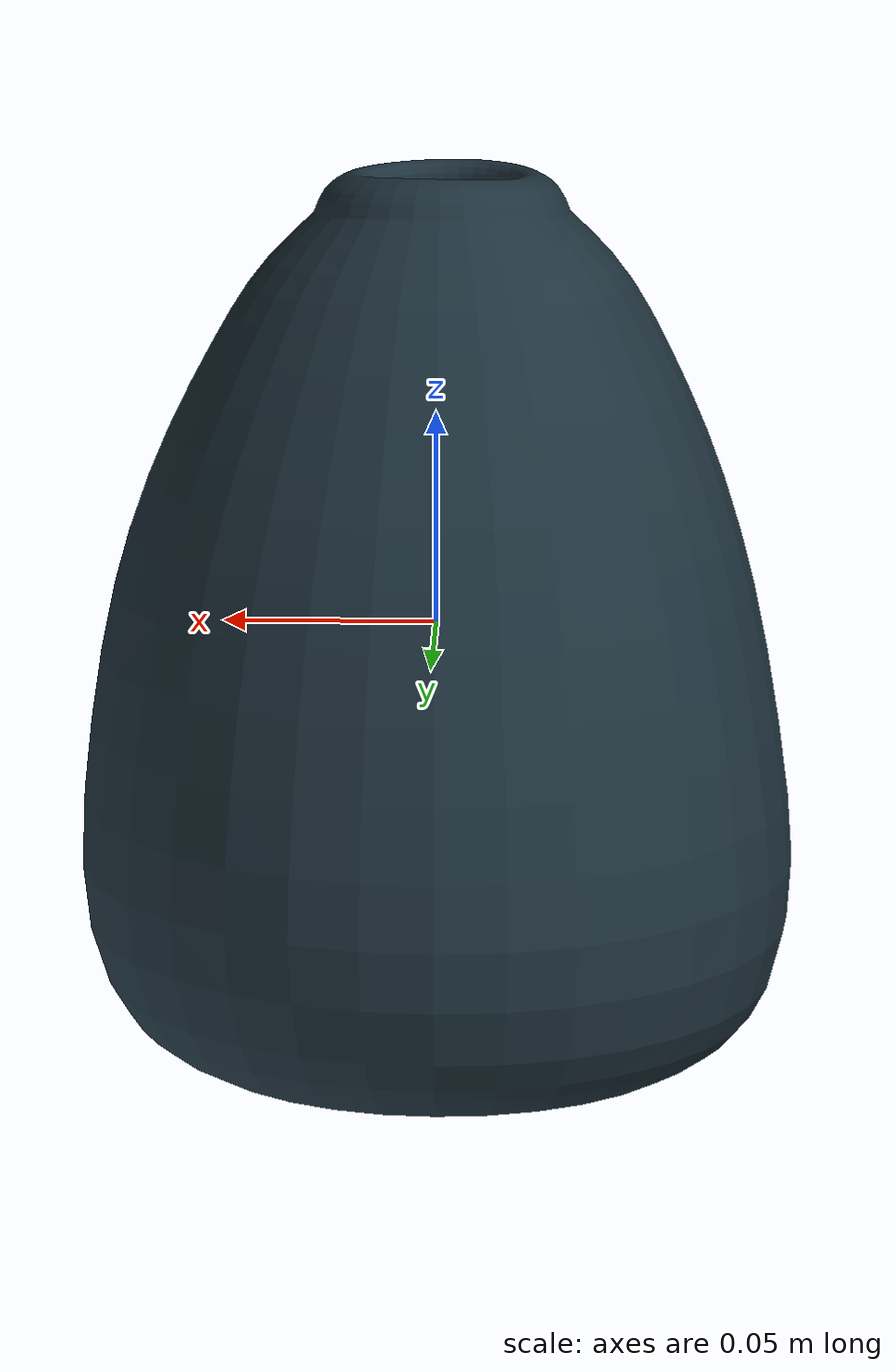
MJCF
<?xml version="1.0" ?>
<mujoco model="blue_vase">
	<compiler meshdir="blue_vase/meshes" texturedir="blue_vase/textures" angle="radian" autolimits="true" balanceinertia="true" boundmass="0.000001" boundinertia="0.000001"/>
	<default>
		<default class="visual">
			<geom contype="0" conaffinity="0"/>
		</default>
		<default class="collision">
			<geom rgba="1.0 0.0 0.0 0.0"/>
		</default>
	</default>
	<asset>
		<mesh name="BlueVase" file="stl/BlueVase.stl" scale="1.0 1.0 1.0"/>
		<mesh name="BlueVase_001" file="stl/BlueVase_001.stl" scale="1.0 1.0 1.0"/>
		<mesh name="BlueVase_002" file="stl/BlueVase_002.stl" scale="1.0 1.0 1.0"/>
		<mesh name="BlueVase_003" file="stl/BlueVase_003.stl" scale="1.0 1.0 1.0"/>
		<mesh name="BlueVase_004" file="stl/BlueVase_004.stl" scale="1.0 1.0 1.0"/>
		<mesh name="BlueVase_005" file="stl/BlueVase_005.stl" scale="1.0 1.0 1.0"/>
		<mesh name="BlueVase_006" file="stl/BlueVase_006.stl" scale="1.0 1.0 1.0"/>
		<mesh name="BlueVase_007" file="stl/BlueVase_007.stl" scale="1.0 1.0 1.0"/>
		<mesh name="BlueVase_008" file="stl/BlueVase_008.stl" scale="1.0 1.0 1.0"/>
		<mesh name="BlueVase_009" file="stl/BlueVase_009.stl" scale="1.0 1.0 1.0"/>
		<mesh name="BlueVase_010" file="stl/BlueVase_010.stl" scale="1.0 1.0 1.0"/>
		<mesh name="BlueVase_011" file="stl/BlueVase_011.stl" scale="1.0 1.0 1.0"/>
		<mesh name="BlueVase_012" file="stl/BlueVase_012.stl" scale="1.0 1.0 1.0"/>
		<mesh name="BlueVase_013" file="stl/BlueVase_013.stl" scale="1.0 1.0 1.0"/>
		<mesh name="BlueVase_014" file="stl/BlueVase_014.stl" scale="1.0 1.0 1.0"/>
		<mesh name="BlueVase_015" file="stl/BlueVase_015.stl" scale="1.0 1.0 1.0"/>
		<mesh name="BlueVase_016" file="stl/BlueVase_016.stl" scale="1.0 1.0 1.0"/>
		<mesh name="BlueVase_017" file="stl/BlueVase_017.stl" scale="1.0 1.0 1.0"/>
		<mesh name="BlueVase_018" file="stl/BlueVase_018.stl" scale="1.0 1.0 1.0"/>
		<mesh name="BlueVase_019" file="stl/BlueVase_019.stl" scale="1.0 1.0 1.0"/>
		<mesh name="BlueVase_020" file="stl/BlueVase_020.stl" scale="1.0 1.0 1.0"/>
		<mesh name="BlueVase_021" file="stl/BlueVase_021.stl" scale="1.0 1.0 1.0"/>
		<mesh name="BlueVase_022" file="stl/BlueVase_022.stl" scale="1.0 1.0 1.0"/>
		<mesh name="BlueVase_023" file="stl/BlueVase_023.stl" scale="1.0 1.0 1.0"/>
		<mesh name="BlueVase_024" file="stl/BlueVase_024.stl" scale="1.0 1.0 1.0"/>
		<mesh name="BlueVase_025" file="stl/BlueVase_025.stl" scale="1.0 1.0 1.0"/>
		<mesh name="BlueVase_026" file="stl/BlueVase_026.stl" scale="1.0 1.0 1.0"/>
		<mesh name="BlueVase_027" file="stl/BlueVase_027.stl" scale="1.0 1.0 1.0"/>
		<mesh name="BlueVase_028" file="stl/BlueVase_028.stl" scale="1.0 1.0 1.0"/>
		<mesh name="BlueVase_029" file="stl/BlueVase_029.stl" scale="1.0 1.0 1.0"/>
		<mesh name="BlueVase_030" file="stl/BlueVase_030.stl" scale="1.0 1.0 1.0"/>
		<mesh name="BlueVase_031" file="stl/BlueVase_031.stl" scale="1.0 1.0 1.0"/>
		<mesh name="BlueVase_032" file="stl/BlueVase_032.stl" scale="1.0 1.0 1.0"/>
		<mesh name="BlueVase_033" file="stl/BlueVase_033.stl" scale="1.0 1.0 1.0"/>
		<mesh name="BlueVase_034" file="stl/BlueVase_034.stl" scale="1.0 1.0 1.0"/>
		<mesh name="BlueVase_035" file="stl/BlueVase_035.stl" scale="1.0 1.0 1.0"/>
		<mesh name="BlueVase_036" file="stl/BlueVase_036.stl" scale="1.0 1.0 1.0"/>
		<mesh name="BlueVase_037" file="stl/BlueVase_037.stl" scale="1.0 1.0 1.0"/>
		<mesh name="BlueVase_038" file="stl/BlueVase_038.stl" scale="1.0 1.0 1.0"/>
		<mesh name="BlueVase_039" file="stl/BlueVase_039.stl" scale="1.0 1.0 1.0"/>
		<mesh name="BlueVase_040" file="stl/BlueVase_040.stl" scale="1.0 1.0 1.0"/>
		<mesh name="BlueVase_041" file="stl/BlueVase_041.stl" scale="1.0 1.0 1.0"/>
		<mesh name="BlueVase_042" file="stl/BlueVase_042.stl" scale="1.0 1.0 1.0"/>
		<mesh name="BlueVase_043" file="stl/BlueVase_043.stl" scale="1.0 1.0 1.0"/>
		<mesh name="BlueVase_044" file="stl/BlueVase_044.stl" scale="1.0 1.0 1.0"/>
		<mesh name="BlueVase_045" file="stl/BlueVase_045.stl" scale="1.0 1.0 1.0"/>
		<mesh name="BlueVase_046" file="stl/BlueVase_046.stl" scale="1.0 1.0 1.0"/>
		<mesh name="BlueVase_047" file="stl/BlueVase_047.stl" scale="1.0 1.0 1.0"/>
		<mesh name="BlueVase_048" file="stl/BlueVase_048.stl" scale="1.0 1.0 1.0"/>
		<mesh name="BlueVase_049" file="stl/BlueVase_049.stl" scale="1.0 1.0 1.0"/>
		<mesh name="BlueVase_050" file="stl/BlueVase_050.stl" scale="1.0 1.0 1.0"/>
		<mesh name="BlueVase_051" file="stl/BlueVase_051.stl" scale="1.0 1.0 1.0"/>
		<mesh name="BlueVase_052" file="stl/BlueVase_052.stl" scale="1.0 1.0 1.0"/>
		<mesh name="BlueVase_053" file="stl/BlueVase_053.stl" scale="1.0 1.0 1.0"/>
		<mesh name="BlueVase_054" file="stl/BlueVase_054.stl" scale="1.0 1.0 1.0"/>
		<mesh name="BlueVase_055" file="stl/BlueVase_055.stl" scale="1.0 1.0 1.0"/>
		<mesh name="BlueVase_056" file="stl/BlueVase_056.stl" scale="1.0 1.0 1.0"/>
		<mesh name="BlueVase_057" file="stl/BlueVase_057.stl" scale="1.0 1.0 1.0"/>
		<mesh name="BlueVase_058" file="stl/BlueVase_058.stl" scale="1.0 1.0 1.0"/>
		<mesh name="BlueVase_059" file="stl/BlueVase_059.stl" scale="1.0 1.0 1.0"/>
		<mesh name="BlueVase_060" file="stl/BlueVase_060.stl" scale="1.0 1.0 1.0"/>
		<mesh name="BlueVase_061" file="stl/BlueVase_061.stl" scale="1.0 1.0 1.0"/>
		<mesh name="BlueVase_062" file="stl/BlueVase_062.stl" scale="1.0 1.0 1.0"/>
		<mesh name="BlueVase_063" file="stl/BlueVase_063.stl" scale="1.0 1.0 1.0"/>
		<mesh name="BlueVase_064" file="stl/BlueVase_064.stl" scale="1.0 1.0 1.0"/>
		<mesh name="BlueVase_065" file="stl/BlueVase_065.stl" scale="1.0 1.0 1.0"/>
		<mesh name="BlueVase_066" file="stl/BlueVase_066.stl" scale="1.0 1.0 1.0"/>
		<mesh name="BlueVase_067" file="stl/BlueVase_067.stl" scale="1.0 1.0 1.0"/>
		<mesh name="BlueVase_068" file="stl/BlueVase_068.stl" scale="1.0 1.0 1.0"/>
		<mesh name="BlueVase_069" file="stl/BlueVase_069.stl" scale="1.0 1.0 1.0"/>
		<mesh name="BlueVase_070" file="stl/BlueVase_070.stl" scale="1.0 1.0 1.0"/>
		<mesh name="BlueVase_071" file="stl/BlueVase_071.stl" scale="1.0 1.0 1.0"/>
		<mesh name="BlueVase_072" file="stl/BlueVase_072.stl" scale="1.0 1.0 1.0"/>
		<mesh name="BlueVase_073" file="stl/BlueVase_073.stl" scale="1.0 1.0 1.0"/>
		<mesh name="BlueVase_074" file="stl/BlueVase_074.stl" scale="1.0 1.0 1.0"/>
		<mesh name="BlueVase_075" file="stl/BlueVase_075.stl" scale="1.0 1.0 1.0"/>
		<mesh name="BlueVase_076" file="stl/BlueVase_076.stl" scale="1.0 1.0 1.0"/>
		<mesh name="BlueVase_077" file="stl/BlueVase_077.stl" scale="1.0 1.0 1.0"/>
		<mesh name="BlueVase_078" file="stl/BlueVase_078.stl" scale="1.0 1.0 1.0"/>
		<mesh name="BlueVase_079" file="stl/BlueVase_079.stl" scale="1.0 1.0 1.0"/>
		<mesh name="BlueVase_080" file="stl/BlueVase_080.stl" scale="1.0 1.0 1.0"/>
		<material name="M_BlueVase" rgba="0.120899997651577 0.19930000603199005 0.24240000545978546 1.0" emission="0.0"/>
	</asset>
	<worldbody>
		<body name="blue_vase" pos="0.0 0.0 0.0" quat="1.0 0.0 0.0 0.0">
			<inertial mass="1.7368546724319458" pos="-0.00020687341748271137 -0.0005860843230038881 -0.040560945868492126" quat="-0.5001904964447021 -0.4948572516441345 -0.5007036328315735 0.5042039752006531" diaginertia="0.006913658231496811 0.012819013558328152 0.01287089753895998"/>
			<geom name="BlueVase" type="mesh" pos="0.0 0.0 0.0" quat="1.0 0.0 0.0 0.0" mesh="BlueVase" material="M_BlueVase" class="visual"/>
			<geom name="BlueVase_001" type="mesh" pos="0.0 0.0 0.0" quat="1.0 0.0 0.0 0.0" mesh="BlueVase_001" class="collision"/>
			<geom name="BlueVase_002" type="mesh" pos="0.0 0.0 0.0" quat="1.0 0.0 0.0 0.0" mesh="BlueVase_002" class="collision"/>
			<geom name="BlueVase_003" type="mesh" pos="0.0 0.0 0.0" quat="1.0 0.0 0.0 0.0" mesh="BlueVase_003" class="collision"/>
			<geom name="BlueVase_004" type="mesh" pos="0.0 0.0 0.0" quat="1.0 0.0 0.0 0.0" mesh="BlueVase_004" class="collision"/>
			<geom name="BlueVase_005" type="mesh" pos="0.0 0.0 0.0" quat="1.0 0.0 0.0 0.0" mesh="BlueVase_005" class="collision"/>
			<geom name="BlueVase_006" type="mesh" pos="0.0 0.0 0.0" quat="1.0 0.0 0.0 0.0" mesh="BlueVase_006" class="collision"/>
			<geom name="BlueVase_007" type="mesh" pos="0.0 0.0 0.0" quat="1.0 0.0 0.0 0.0" mesh="BlueVase_007" class="collision"/>
			<geom name="BlueVase_008" type="mesh" pos="0.0 0.0 0.0" quat="1.0 0.0 0.0 0.0" mesh="BlueVase_008" class="collision"/>
			<geom name="BlueVase_009" type="mesh" pos="0.0 0.0 0.0" quat="1.0 0.0 0.0 0.0" mesh="BlueVase_009" class="collision"/>
			<geom name="BlueVase_010" type="mesh" pos="0.0 0.0 0.0" quat="1.0 0.0 0.0 0.0" mesh="BlueVase_010" class="collision"/>
			<geom name="BlueVase_011" type="mesh" pos="0.0 0.0 0.0" quat="1.0 0.0 0.0 0.0" mesh="BlueVase_011" class="collision"/>
			<geom name="BlueVase_012" type="mesh" pos="0.0 0.0 0.0" quat="1.0 0.0 0.0 0.0" mesh="BlueVase_012" class="collision"/>
			<geom name="BlueVase_013" type="mesh" pos="0.0 0.0 0.0" quat="1.0 0.0 0.0 0.0" mesh="BlueVase_013" class="collision"/>
			<geom name="BlueVase_014" type="mesh" pos="0.0 0.0 0.0" quat="1.0 0.0 0.0 0.0" mesh="BlueVase_014" class="collision"/>
			<geom name="BlueVase_015" type="mesh" pos="0.0 0.0 0.0" quat="1.0 0.0 0.0 0.0" mesh="BlueVase_015" class="collision"/>
			<geom name="BlueVase_016" type="mesh" pos="0.0 0.0 0.0" quat="1.0 0.0 0.0 0.0" mesh="BlueVase_016" class="collision"/>
			<geom name="BlueVase_017" type="mesh" pos="0.0 0.0 0.0" quat="1.0 0.0 0.0 0.0" mesh="BlueVase_017" class="collision"/>
			<geom name="BlueVase_018" type="mesh" pos="0.0 0.0 0.0" quat="1.0 0.0 0.0 0.0" mesh="BlueVase_018" class="collision"/>
			<geom name="BlueVase_019" type="mesh" pos="0.0 0.0 0.0" quat="1.0 0.0 0.0 0.0" mesh="BlueVase_019" class="collision"/>
			<geom name="BlueVase_020" type="mesh" pos="0.0 0.0 0.0" quat="1.0 0.0 0.0 0.0" mesh="BlueVase_020" class="collision"/>
			<geom name="BlueVase_021" type="mesh" pos="0.0 0.0 0.0" quat="1.0 0.0 0.0 0.0" mesh="BlueVase_021" class="collision"/>
			<geom name="BlueVase_022" type="mesh" pos="0.0 0.0 0.0" quat="1.0 0.0 0.0 0.0" mesh="BlueVase_022" class="collision"/>
			<geom name="BlueVase_023" type="mesh" pos="0.0 0.0 0.0" quat="1.0 0.0 0.0 0.0" mesh="BlueVase_023" class="collision"/>
			<geom name="BlueVase_024" type="mesh" pos="0.0 0.0 0.0" quat="1.0 0.0 0.0 0.0" mesh="BlueVase_024" class="collision"/>
			<geom name="BlueVase_025" type="mesh" pos="0.0 0.0 0.0" quat="1.0 0.0 0.0 0.0" mesh="BlueVase_025" class="collision"/>
			<geom name="BlueVase_026" type="mesh" pos="0.0 0.0 0.0" quat="1.0 0.0 0.0 0.0" mesh="BlueVase_026" class="collision"/>
			<geom name="BlueVase_027" type="mesh" pos="0.0 0.0 0.0" quat="1.0 0.0 0.0 0.0" mesh="BlueVase_027" class="collision"/>
			<geom name="BlueVase_028" type="mesh" pos="0.0 0.0 0.0" quat="1.0 0.0 0.0 0.0" mesh="BlueVase_028" class="collision"/>
			<geom name="BlueVase_029" type="mesh" pos="0.0 0.0 0.0" quat="1.0 0.0 0.0 0.0" mesh="BlueVase_029" class="collision"/>
			<geom name="BlueVase_030" type="mesh" pos="0.0 0.0 0.0" quat="1.0 0.0 0.0 0.0" mesh="BlueVase_030" class="collision"/>
			<geom name="BlueVase_031" type="mesh" pos="0.0 0.0 0.0" quat="1.0 0.0 0.0 0.0" mesh="BlueVase_031" class="collision"/>
			<geom name="BlueVase_032" type="mesh" pos="0.0 0.0 0.0" quat="1.0 0.0 0.0 0.0" mesh="BlueVase_032" class="collision"/>
			<geom name="BlueVase_033" type="mesh" pos="0.0 0.0 0.0" quat="1.0 0.0 0.0 0.0" mesh="BlueVase_033" class="collision"/>
			<geom name="BlueVase_034" type="mesh" pos="0.0 0.0 0.0" quat="1.0 0.0 0.0 0.0" mesh="BlueVase_034" class="collision"/>
			<geom name="BlueVase_035" type="mesh" pos="0.0 0.0 0.0" quat="1.0 0.0 0.0 0.0" mesh="BlueVase_035" class="collision"/>
			<geom name="BlueVase_036" type="mesh" pos="0.0 0.0 0.0" quat="1.0 0.0 0.0 0.0" mesh="BlueVase_036" class="collision"/>
			<geom name="BlueVase_037" type="mesh" pos="0.0 0.0 0.0" quat="1.0 0.0 0.0 0.0" mesh="BlueVase_037" class="collision"/>
			<geom name="BlueVase_038" type="mesh" pos="0.0 0.0 0.0" quat="1.0 0.0 0.0 0.0" mesh="BlueVase_038" class="collision"/>
			<geom name="BlueVase_039" type="mesh" pos="0.0 0.0 0.0" quat="1.0 0.0 0.0 0.0" mesh="BlueVase_039" class="collision"/>
			<geom name="BlueVase_040" type="mesh" pos="0.0 0.0 0.0" quat="1.0 0.0 0.0 0.0" mesh="BlueVase_040" class="collision"/>
			<geom name="BlueVase_041" type="mesh" pos="0.0 0.0 0.0" quat="1.0 0.0 0.0 0.0" mesh="BlueVase_041" class="collision"/>
			<geom name="BlueVase_042" type="mesh" pos="0.0 0.0 0.0" quat="1.0 0.0 0.0 0.0" mesh="BlueVase_042" class="collision"/>
			<geom name="BlueVase_043" type="mesh" pos="0.0 0.0 0.0" quat="1.0 0.0 0.0 0.0" mesh="BlueVase_043" class="collision"/>
			<geom name="BlueVase_044" type="mesh" pos="0.0 0.0 0.0" quat="1.0 0.0 0.0 0.0" mesh="BlueVase_044" class="collision"/>
			<geom name="BlueVase_045" type="mesh" pos="0.0 0.0 0.0" quat="1.0 0.0 0.0 0.0" mesh="BlueVase_045" class="collision"/>
			<geom name="BlueVase_046" type="mesh" pos="0.0 0.0 0.0" quat="1.0 0.0 0.0 0.0" mesh="BlueVase_046" class="collision"/>
			<geom name="BlueVase_047" type="mesh" pos="0.0 0.0 0.0" quat="1.0 0.0 0.0 0.0" mesh="BlueVase_047" class="collision"/>
			<geom name="BlueVase_048" type="mesh" pos="0.0 0.0 0.0" quat="1.0 0.0 0.0 0.0" mesh="BlueVase_048" class="collision"/>
			<geom name="BlueVase_049" type="mesh" pos="0.0 0.0 0.0" quat="1.0 0.0 0.0 0.0" mesh="BlueVase_049" class="collision"/>
			<geom name="BlueVase_050" type="mesh" pos="0.0 0.0 0.0" quat="1.0 0.0 0.0 0.0" mesh="BlueVase_050" class="collision"/>
			<geom name="BlueVase_051" type="mesh" pos="0.0 0.0 0.0" quat="1.0 0.0 0.0 0.0" mesh="BlueVase_051" class="collision"/>
			<geom name="BlueVase_052" type="mesh" pos="0.0 0.0 0.0" quat="1.0 0.0 0.0 0.0" mesh="BlueVase_052" class="collision"/>
			<geom name="BlueVase_053" type="mesh" pos="0.0 0.0 0.0" quat="1.0 0.0 0.0 0.0" mesh="BlueVase_053" class="collision"/>
			<geom name="BlueVase_054" type="mesh" pos="0.0 0.0 0.0" quat="1.0 0.0 0.0 0.0" mesh="BlueVase_054" class="collision"/>
			<geom name="BlueVase_055" type="mesh" pos="0.0 0.0 0.0" quat="1.0 0.0 0.0 0.0" mesh="BlueVase_055" class="collision"/>
			<geom name="BlueVase_056" type="mesh" pos="0.0 0.0 0.0" quat="1.0 0.0 0.0 0.0" mesh="BlueVase_056" class="collision"/>
			<geom name="BlueVase_057" type="mesh" pos="0.0 0.0 0.0" quat="1.0 0.0 0.0 0.0" mesh="BlueVase_057" class="collision"/>
			<geom name="BlueVase_058" type="mesh" pos="0.0 0.0 0.0" quat="1.0 0.0 0.0 0.0" mesh="BlueVase_058" class="collision"/>
			<geom name="BlueVase_059" type="mesh" pos="0.0 0.0 0.0" quat="1.0 0.0 0.0 0.0" mesh="BlueVase_059" class="collision"/>
			<geom name="BlueVase_060" type="mesh" pos="0.0 0.0 0.0" quat="1.0 0.0 0.0 0.0" mesh="BlueVase_060" class="collision"/>
			<geom name="BlueVase_061" type="mesh" pos="0.0 0.0 0.0" quat="1.0 0.0 0.0 0.0" mesh="BlueVase_061" class="collision"/>
			<geom name="BlueVase_062" type="mesh" pos="0.0 0.0 0.0" quat="1.0 0.0 0.0 0.0" mesh="BlueVase_062" class="collision"/>
			<geom name="BlueVase_063" type="mesh" pos="0.0 0.0 0.0" quat="1.0 0.0 0.0 0.0" mesh="BlueVase_063" class="collision"/>
			<geom name="BlueVase_064" type="mesh" pos="0.0 0.0 0.0" quat="1.0 0.0 0.0 0.0" mesh="BlueVase_064" class="collision"/>
			<geom name="BlueVase_065" type="mesh" pos="0.0 0.0 0.0" quat="1.0 0.0 0.0 0.0" mesh="BlueVase_065" class="collision"/>
			<geom name="BlueVase_066" type="mesh" pos="0.0 0.0 0.0" quat="1.0 0.0 0.0 0.0" mesh="BlueVase_066" class="collision"/>
			<geom name="BlueVase_067" type="mesh" pos="0.0 0.0 0.0" quat="1.0 0.0 0.0 0.0" mesh="BlueVase_067" class="collision"/>
			<geom name="BlueVase_068" type="mesh" pos="0.0 0.0 0.0" quat="1.0 0.0 0.0 0.0" mesh="BlueVase_068" class="collision"/>
			<geom name="BlueVase_069" type="mesh" pos="0.0 0.0 0.0" quat="1.0 0.0 0.0 0.0" mesh="BlueVase_069" class="collision"/>
			<geom name="BlueVase_070" type="mesh" pos="0.0 0.0 0.0" quat="1.0 0.0 0.0 0.0" mesh="BlueVase_070" class="collision"/>
			<geom name="BlueVase_071" type="mesh" pos="0.0 0.0 0.0" quat="1.0 0.0 0.0 0.0" mesh="BlueVase_071" class="collision"/>
			<geom name="BlueVase_072" type="mesh" pos="0.0 0.0 0.0" quat="1.0 0.0 0.0 0.0" mesh="BlueVase_072" class="collision"/>
			<geom name="BlueVase_073" type="mesh" pos="0.0 0.0 0.0" quat="1.0 0.0 0.0 0.0" mesh="BlueVase_073" class="collision"/>
			<geom name="BlueVase_074" type="mesh" pos="0.0 0.0 0.0" quat="1.0 0.0 0.0 0.0" mesh="BlueVase_074" class="collision"/>
			<geom name="BlueVase_075" type="mesh" pos="0.0 0.0 0.0" quat="1.0 0.0 0.0 0.0" mesh="BlueVase_075" class="collision"/>
			<geom name="BlueVase_076" type="mesh" pos="0.0 0.0 0.0" quat="1.0 0.0 0.0 0.0" mesh="BlueVase_076" class="collision"/>
			<geom name="BlueVase_077" type="mesh" pos="0.0 0.0 0.0" quat="1.0 0.0 0.0 0.0" mesh="BlueVase_077" class="collision"/>
			<geom name="BlueVase_078" type="mesh" pos="0.0 0.0 0.0" quat="1.0 0.0 0.0 0.0" mesh="BlueVase_078" class="collision"/>
			<geom name="BlueVase_079" type="mesh" pos="0.0 0.0 0.0" quat="1.0 0.0 0.0 0.0" mesh="BlueVase_079" class="collision"/>
			<geom name="BlueVase_080" type="mesh" pos="0.0 0.0 0.0" quat="1.0 0.0 0.0 0.0" mesh="BlueVase_080" class="collision"/>
		</body>
	</worldbody>
	<equality/>
</mujoco>
